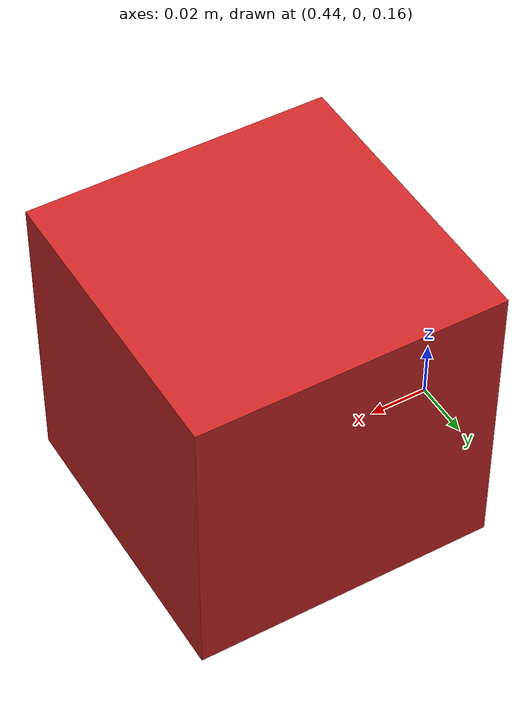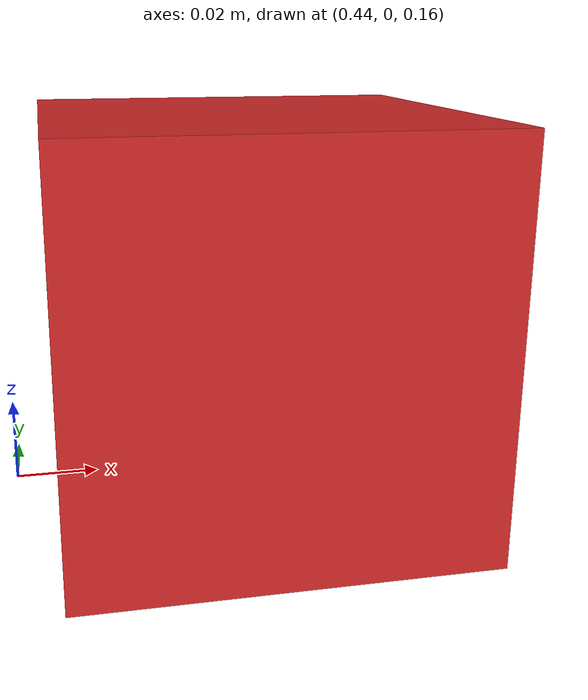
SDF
<?xml version='1.0'?>
<sdf version='1.4'>
  <model name="target_cube">
    <pose>0.5 0 0.2 0 0 0</pose>
    <static>false</static>
    <link name="link">
      <visual name="visual">
        <geometry><box><size>0.1 0.1 0.1</size></box></geometry>
        <material><script><uri>file://media/materials/scripts/gazebo.material</uri><name>Gazebo/Red</name></script></material>
      </visual>
      <collision name="collision">
        <geometry><box><size>0.1 0.1 0.1</size></box></geometry>
      </collision>
    </link>
  </model>
</sdf>
